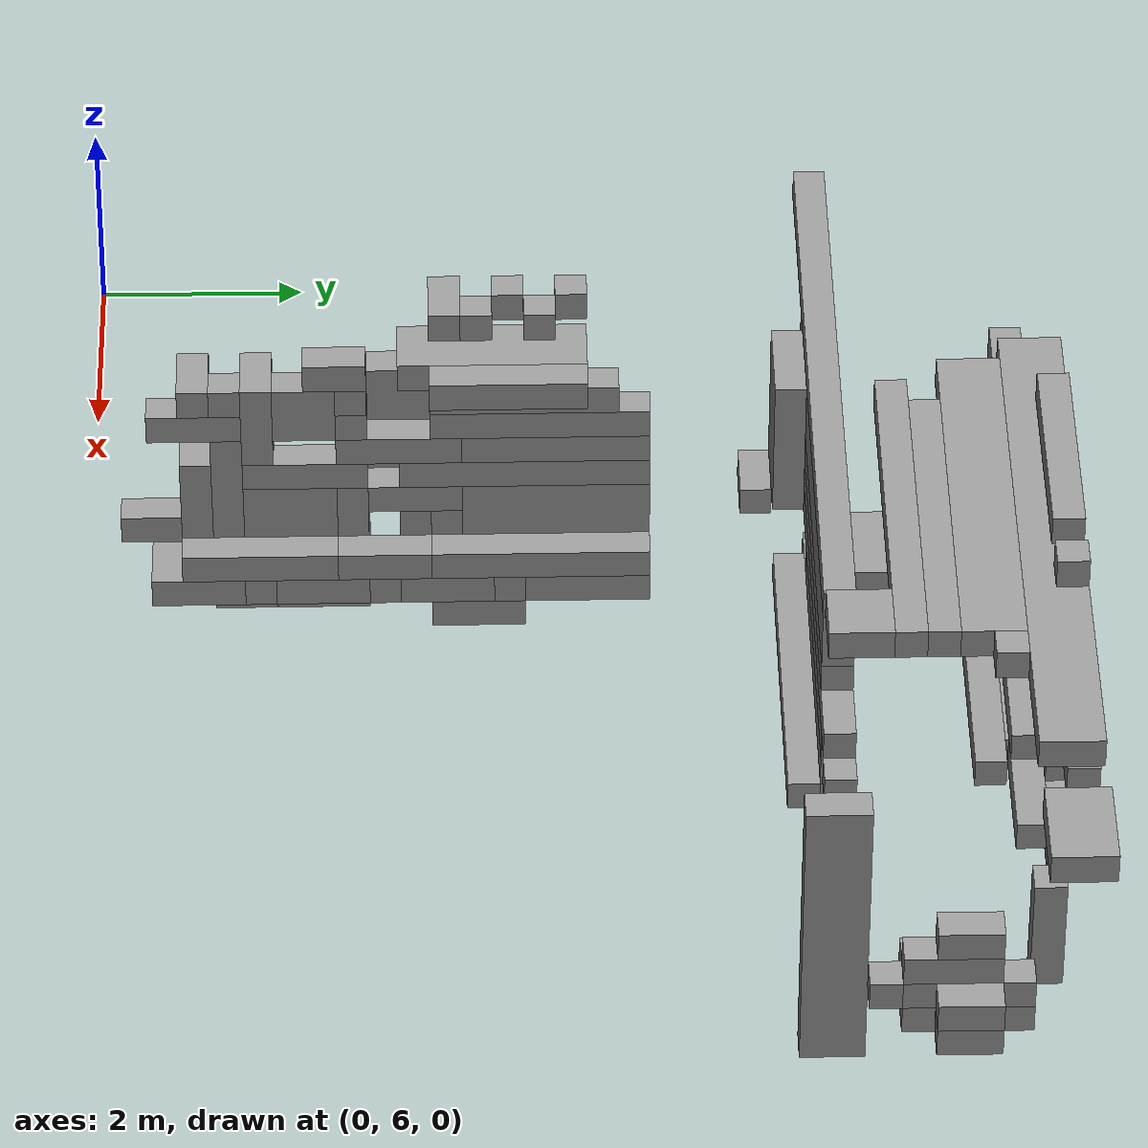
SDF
<sdf version="1.6">
 <world name="bt_world">
  <include><uri>model://sun</uri></include>
  <model name="obstacle_2222">
   <static>true</static>
   <pose>4.35 13.049999999999999 2.25 0 0 0</pose>
   <link name="link">
    <collision name="collision"><geometry><box><size>6.3 0.3 0.3</size></box></geometry></collision>
    <visual name="visual">
     <geometry><box><size>6.3 0.3 0.3</size></box></geometry>
     <material><ambient>0.5 0.5 0.5 1</ambient><diffuse>0.6 0.6 0.6 1</diffuse></material>
    </visual>
   </link>
  </model>
  <model name="obstacle_2225">
   <static>true</static>
   <pose>4.8 15.149999999999999 -0.15 0 0 0</pose>
   <link name="link">
    <collision name="collision"><geometry><box><size>7.199999999999999 0.3 0.3</size></box></geometry></collision>
    <visual name="visual">
     <geometry><box><size>7.199999999999999 0.3 0.3</size></box></geometry>
     <material><ambient>0.5 0.5 0.5 1</ambient><diffuse>0.6 0.6 0.6 1</diffuse></material>
    </visual>
   </link>
  </model>
  <model name="obstacle_2308">
   <static>true</static>
   <pose>5.3999999999999995 13.049999999999999 1.05 0 0 0</pose>
   <link name="link">
    <collision name="collision">
     <geometry><box><size>5.3999999999999995 0.3 0.3</size></box></geometry>
    </collision>
    <visual name="visual">
     <geometry><box><size>5.3999999999999995 0.3 0.3</size></box></geometry>
     <material><ambient>0.5 0.5 0.5 1</ambient><diffuse>0.6 0.6 0.6 1</diffuse></material>
    </visual>
   </link>
  </model>
  <model name="obstacle_2309">
   <static>true</static>
   <pose>5.1 13.049999999999999 1.3499999999999999 0 0 0</pose>
   <link name="link">
    <collision name="collision"><geometry><box><size>4.8 0.3 0.3</size></box></geometry></collision>
    <visual name="visual">
     <geometry><box><size>4.8 0.3 0.3</size></box></geometry>
     <material><ambient>0.5 0.5 0.5 1</ambient><diffuse>0.6 0.6 0.6 1</diffuse></material>
    </visual>
   </link>
  </model>
  <model name="obstacle_2312">
   <static>true</static>
   <pose>3.75 14.25 0.15 0 0 0</pose>
   <link name="link">
    <collision name="collision"><geometry><box><size>2.1 0.3 0.3</size></box></geometry></collision>
    <visual name="visual">
     <geometry><box><size>2.1 0.3 0.3</size></box></geometry>
     <material><ambient>0.5 0.5 0.5 1</ambient><diffuse>0.6 0.6 0.6 1</diffuse></material>
    </visual>
   </link>
  </model>
  <model name="obstacle_2349">
   <static>true</static>
   <pose>5.25 13.049999999999999 1.7999999999999998 0 0 0</pose>
   <link name="link">
    <collision name="collision"><geometry><box><size>4.5 0.3 0.6</size></box></geometry></collision>
    <visual name="visual">
     <geometry><box><size>4.5 0.3 0.6</size></box></geometry>
     <material><ambient>0.5 0.5 0.5 1</ambient><diffuse>0.6 0.6 0.6 1</diffuse></material>
    </visual>
   </link>
  </model>
  <model name="obstacle_2351">
   <static>true</static>
   <pose>3.9 13.95 0.15 0 0 0</pose>
   <link name="link">
    <collision name="collision">
     <geometry><box><size>1.7999999999999998 0.3 0.3</size></box></geometry>
    </collision>
    <visual name="visual">
     <geometry><box><size>1.7999999999999998 0.3 0.3</size></box></geometry>
     <material><ambient>0.5 0.5 0.5 1</ambient><diffuse>0.6 0.6 0.6 1</diffuse></material>
    </visual>
   </link>
  </model>
  <model name="obstacle_2370">
   <static>true</static>
   <pose>3.5999999999999996 12.45 0.44999999999999996 0 0 0</pose>
   <link name="link">
    <collision name="collision"><geometry><box><size>0.6 0.3 0.3</size></box></geometry></collision>
    <visual name="visual">
     <geometry><box><size>0.6 0.3 0.3</size></box></geometry>
     <material><ambient>0.5 0.5 0.5 1</ambient><diffuse>0.6 0.6 0.6 1</diffuse></material>
    </visual>
   </link>
  </model>
  <model name="obstacle_2371">
   <static>true</static>
   <pose>3.75 12.75 1.3499999999999999 0 0 0</pose>
   <link name="link">
    <collision name="collision">
     <geometry><box><size>0.8999999999999999 0.3 1.5</size></box></geometry>
    </collision>
    <visual name="visual">
     <geometry><box><size>0.8999999999999999 0.3 1.5</size></box></geometry>
     <material><ambient>0.5 0.5 0.5 1</ambient><diffuse>0.6 0.6 0.6 1</diffuse></material>
    </visual>
   </link>
  </model>
  <model name="obstacle_2374">
   <static>true</static>
   <pose>3.9 14.85 1.3499999999999999 0 0 0</pose>
   <link name="link">
    <collision name="collision"><geometry><box><size>1.2 0.3 1.5</size></box></geometry></collision>
    <visual name="visual">
     <geometry><box><size>1.2 0.3 1.5</size></box></geometry>
     <material><ambient>0.5 0.5 0.5 1</ambient><diffuse>0.6 0.6 0.6 1</diffuse></material>
    </visual>
   </link>
  </model>
  <model name="obstacle_2385">
   <static>true</static>
   <pose>4.05 8.25 -0.15 0 0 0</pose>
   <link name="link">
    <collision name="collision">
     <geometry><box><size>0.8999999999999999 0.8999999999999999 0.3</size></box></geometry>
    </collision>
    <visual name="visual">
     <geometry><box><size>0.8999999999999999 0.8999999999999999 0.3</size></box></geometry>
     <material><ambient>0.5 0.5 0.5 1</ambient><diffuse>0.6 0.6 0.6 1</diffuse></material>
    </visual>
   </link>
  </model>
  <model name="obstacle_2386">
   <static>true</static>
   <pose>4.05 14.85 0.3 0 0 0</pose>
   <link name="link">
    <collision name="collision">
     <geometry><box><size>0.8999999999999999 0.3 0.6</size></box></geometry>
    </collision>
    <visual name="visual">
     <geometry><box><size>0.8999999999999999 0.3 0.6</size></box></geometry>
     <material><ambient>0.5 0.5 0.5 1</ambient><diffuse>0.6 0.6 0.6 1</diffuse></material>
    </visual>
   </link>
  </model>
  <model name="obstacle_2429">
   <static>true</static>
   <pose>4.05 7.35 0.44999999999999996 0 0 0</pose>
   <link name="link">
    <collision name="collision"><geometry><box><size>0.3 2.1 0.3</size></box></geometry></collision>
    <visual name="visual">
     <geometry><box><size>0.3 2.1 0.3</size></box></geometry>
     <material><ambient>0.5 0.5 0.5 1</ambient><diffuse>0.6 0.6 0.6 1</diffuse></material>
    </visual>
   </link>
  </model>
  <model name="obstacle_2432">
   <static>true</static>
   <pose>4.2 7.05 1.05 0 0 0</pose>
   <link name="link">
    <collision name="collision">
     <geometry><box><size>0.6 0.3 0.8999999999999999</size></box></geometry>
    </collision>
    <visual name="visual">
     <geometry><box><size>0.6 0.3 0.8999999999999999</size></box></geometry>
     <material><ambient>0.5 0.5 0.5 1</ambient><diffuse>0.6 0.6 0.6 1</diffuse></material>
    </visual>
   </link>
  </model>
  <model name="obstacle_2433">
   <static>true</static>
   <pose>4.2 7.05 2.25 0 0 0</pose>
   <link name="link">
    <collision name="collision"><geometry><box><size>0.6 0.3 0.3</size></box></geometry></collision>
    <visual name="visual">
     <geometry><box><size>0.6 0.3 0.3</size></box></geometry>
     <material><ambient>0.5 0.5 0.5 1</ambient><diffuse>0.6 0.6 0.6 1</diffuse></material>
    </visual>
   </link>
  </model>
  <model name="obstacle_2434">
   <static>true</static>
   <pose>4.2 7.5 -0.15 0 0 0</pose>
   <link name="link">
    <collision name="collision"><geometry><box><size>0.6 0.6 0.3</size></box></geometry></collision>
    <visual name="visual">
     <geometry><box><size>0.6 0.6 0.3</size></box></geometry>
     <material><ambient>0.5 0.5 0.5 1</ambient><diffuse>0.6 0.6 0.6 1</diffuse></material>
    </visual>
   </link>
  </model>
  <model name="obstacle_2435">
   <static>true</static>
   <pose>4.2 7.949999999999999 0.8999999999999999 0 0 0</pose>
   <link name="link">
    <collision name="collision">
     <geometry><box><size>0.6 0.8999999999999999 0.6</size></box></geometry>
    </collision>
    <visual name="visual">
     <geometry><box><size>0.6 0.8999999999999999 0.6</size></box></geometry>
     <material><ambient>0.5 0.5 0.5 1</ambient><diffuse>0.6 0.6 0.6 1</diffuse></material>
    </visual>
   </link>
  </model>
  <model name="obstacle_2436">
   <static>true</static>
   <pose>4.2 7.6499999999999995 1.95 0 0 0</pose>
   <link name="link">
    <collision name="collision">
     <geometry><box><size>0.6 0.3 0.8999999999999999</size></box></geometry>
    </collision>
    <visual name="visual">
     <geometry><box><size>0.6 0.3 0.8999999999999999</size></box></geometry>
     <material><ambient>0.5 0.5 0.5 1</ambient><diffuse>0.6 0.6 0.6 1</diffuse></material>
    </visual>
   </link>
  </model>
  <model name="obstacle_2437">
   <static>true</static>
   <pose>4.2 9.0 1.65 0 0 0</pose>
   <link name="link">
    <collision name="collision"><geometry><box><size>0.6 1.2 0.3</size></box></geometry></collision>
    <visual name="visual">
     <geometry><box><size>0.6 1.2 0.3</size></box></geometry>
     <material><ambient>0.5 0.5 0.5 1</ambient><diffuse>0.6 0.6 0.6 1</diffuse></material>
    </visual>
   </link>
  </model>
  <model name="obstacle_2438">
   <static>true</static>
   <pose>4.2 8.549999999999999 1.95 0 0 0</pose>
   <link name="link">
    <collision name="collision"><geometry><box><size>0.6 0.3 0.3</size></box></geometry></collision>
    <visual name="visual">
     <geometry><box><size>0.6 0.3 0.3</size></box></geometry>
     <material><ambient>0.5 0.5 0.5 1</ambient><diffuse>0.6 0.6 0.6 1</diffuse></material>
    </visual>
   </link>
  </model>
  <model name="obstacle_2439">
   <static>true</static>
   <pose>4.2 9.15 1.05 0 0 0</pose>
   <link name="link">
    <collision name="collision">
     <geometry><box><size>0.6 0.8999999999999999 0.3</size></box></geometry>
    </collision>
    <visual name="visual">
     <geometry><box><size>0.6 0.8999999999999999 0.3</size></box></geometry>
     <material><ambient>0.5 0.5 0.5 1</ambient><diffuse>0.6 0.6 0.6 1</diffuse></material>
    </visual>
   </link>
  </model>
  <model name="obstacle_2440">
   <static>true</static>
   <pose>4.05 9.15 1.3499999999999999 0 0 0</pose>
   <link name="link">
    <collision name="collision">
     <geometry><box><size>0.3 0.8999999999999999 0.3</size></box></geometry>
    </collision>
    <visual name="visual">
     <geometry><box><size>0.3 0.8999999999999999 0.3</size></box></geometry>
     <material><ambient>0.5 0.5 0.5 1</ambient><diffuse>0.6 0.6 0.6 1</diffuse></material>
    </visual>
   </link>
  </model>
  <model name="obstacle_2441">
   <static>true</static>
   <pose>4.05 9.15 2.1 0 0 0</pose>
   <link name="link">
    <collision name="collision">
     <geometry><box><size>0.3 0.8999999999999999 0.6</size></box></geometry>
    </collision>
    <visual name="visual">
     <geometry><box><size>0.3 0.8999999999999999 0.6</size></box></geometry>
     <material><ambient>0.5 0.5 0.5 1</ambient><diffuse>0.6 0.6 0.6 1</diffuse></material>
    </visual>
   </link>
  </model>
  <model name="obstacle_2442">
   <static>true</static>
   <pose>4.2 9.9 2.55 0 0 0</pose>
   <link name="link">
    <collision name="collision">
     <geometry><box><size>0.6 1.7999999999999998 0.3</size></box></geometry>
    </collision>
    <visual name="visual">
     <geometry><box><size>0.6 1.7999999999999998 0.3</size></box></geometry>
     <material><ambient>0.5 0.5 0.5 1</ambient><diffuse>0.6 0.6 0.6 1</diffuse></material>
    </visual>
   </link>
  </model>
  <model name="obstacle_2443">
   <static>true</static>
   <pose>4.35 10.35 0.44999999999999996 0 0 0</pose>
   <link name="link">
    <collision name="collision">
     <geometry><box><size>0.8999999999999999 2.1 0.3</size></box></geometry>
    </collision>
    <visual name="visual">
     <geometry><box><size>0.8999999999999999 2.1 0.3</size></box></geometry>
     <material><ambient>0.5 0.5 0.5 1</ambient><diffuse>0.6 0.6 0.6 1</diffuse></material>
    </visual>
   </link>
  </model>
  <model name="obstacle_2444">
   <static>true</static>
   <pose>4.2 9.45 0.75 0 0 0</pose>
   <link name="link">
    <collision name="collision"><geometry><box><size>0.6 0.3 0.3</size></box></geometry></collision>
    <visual name="visual">
     <geometry><box><size>0.6 0.3 0.3</size></box></geometry>
     <material><ambient>0.5 0.5 0.5 1</ambient><diffuse>0.6 0.6 0.6 1</diffuse></material>
    </visual>
   </link>
  </model>
  <model name="obstacle_2445">
   <static>true</static>
   <pose>4.2 9.45 3.15 0 0 0</pose>
   <link name="link">
    <collision name="collision"><geometry><box><size>0.6 0.3 0.3</size></box></geometry></collision>
    <visual name="visual">
     <geometry><box><size>0.6 0.3 0.3</size></box></geometry>
     <material><ambient>0.5 0.5 0.5 1</ambient><diffuse>0.6 0.6 0.6 1</diffuse></material>
    </visual>
   </link>
  </model>
  <model name="obstacle_2446">
   <static>true</static>
   <pose>4.05 10.049999999999999 3.15 0 0 0</pose>
   <link name="link">
    <collision name="collision"><geometry><box><size>0.3 0.3 0.3</size></box></geometry></collision>
    <visual name="visual">
     <geometry><box><size>0.3 0.3 0.3</size></box></geometry>
     <material><ambient>0.5 0.5 0.5 1</ambient><diffuse>0.6 0.6 0.6 1</diffuse></material>
    </visual>
   </link>
  </model>
  <model name="obstacle_2447">
   <static>true</static>
   <pose>4.05 10.65 3.15 0 0 0</pose>
   <link name="link">
    <collision name="collision"><geometry><box><size>0.3 0.3 0.3</size></box></geometry></collision>
    <visual name="visual">
     <geometry><box><size>0.3 0.3 0.3</size></box></geometry>
     <material><ambient>0.5 0.5 0.5 1</ambient><diffuse>0.6 0.6 0.6 1</diffuse></material>
    </visual>
   </link>
  </model>
  <model name="obstacle_2448">
   <static>true</static>
   <pose>4.35 13.049999999999999 -0.44999999999999996 0 0 0</pose>
   <link name="link">
    <collision name="collision">
     <geometry><box><size>0.8999999999999999 0.3 0.3</size></box></geometry>
    </collision>
    <visual name="visual">
     <geometry><box><size>0.8999999999999999 0.3 0.3</size></box></geometry>
     <material><ambient>0.5 0.5 0.5 1</ambient><diffuse>0.6 0.6 0.6 1</diffuse></material>
    </visual>
   </link>
  </model>
  <model name="obstacle_2449">
   <static>true</static>
   <pose>4.35 13.5 0.15 0 0 0</pose>
   <link name="link">
    <collision name="collision">
     <geometry><box><size>0.8999999999999999 0.6 0.3</size></box></geometry>
    </collision>
    <visual name="visual">
     <geometry><box><size>0.8999999999999999 0.6 0.3</size></box></geometry>
     <material><ambient>0.5 0.5 0.5 1</ambient><diffuse>0.6 0.6 0.6 1</diffuse></material>
    </visual>
   </link>
  </model>
  <model name="obstacle_2450">
   <static>true</static>
   <pose>5.3999999999999995 14.85 -0.15 0 0 0</pose>
   <link name="link">
    <collision name="collision"><geometry><box><size>3.0 0.3 0.3</size></box></geometry></collision>
    <visual name="visual">
     <geometry><box><size>3.0 0.3 0.3</size></box></geometry>
     <material><ambient>0.5 0.5 0.5 1</ambient><diffuse>0.6 0.6 0.6 1</diffuse></material>
    </visual>
   </link>
  </model>
  <model name="obstacle_2518">
   <static>true</static>
   <pose>4.5 7.05 0.15 0 0 0</pose>
   <link name="link">
    <collision name="collision">
     <geometry><box><size>0.6 0.8999999999999999 0.3</size></box></geometry>
    </collision>
    <visual name="visual">
     <geometry><box><size>0.6 0.8999999999999999 0.3</size></box></geometry>
     <material><ambient>0.5 0.5 0.5 1</ambient><diffuse>0.6 0.6 0.6 1</diffuse></material>
    </visual>
   </link>
  </model>
  <model name="obstacle_2520">
   <static>true</static>
   <pose>4.35 7.05 1.95 0 0 0</pose>
   <link name="link">
    <collision name="collision">
     <geometry><box><size>0.3 0.8999999999999999 0.3</size></box></geometry>
    </collision>
    <visual name="visual">
     <geometry><box><size>0.3 0.8999999999999999 0.3</size></box></geometry>
     <material><ambient>0.5 0.5 0.5 1</ambient><diffuse>0.6 0.6 0.6 1</diffuse></material>
    </visual>
   </link>
  </model>
  <model name="obstacle_2522">
   <static>true</static>
   <pose>4.5 7.6499999999999995 0.44999999999999996 0 0 0</pose>
   <link name="link">
    <collision name="collision"><geometry><box><size>0.6 1.5 0.3</size></box></geometry></collision>
    <visual name="visual">
     <geometry><box><size>0.6 1.5 0.3</size></box></geometry>
     <material><ambient>0.5 0.5 0.5 1</ambient><diffuse>0.6 0.6 0.6 1</diffuse></material>
    </visual>
   </link>
  </model>
  <model name="obstacle_2523">
   <static>true</static>
   <pose>4.35 7.35 1.2 0 0 0</pose>
   <link name="link">
    <collision name="collision"><geometry><box><size>0.3 0.3 1.2</size></box></geometry></collision>
    <visual name="visual">
     <geometry><box><size>0.3 0.3 1.2</size></box></geometry>
     <material><ambient>0.5 0.5 0.5 1</ambient><diffuse>0.6 0.6 0.6 1</diffuse></material>
    </visual>
   </link>
  </model>
  <model name="obstacle_2524">
   <static>true</static>
   <pose>4.35 7.35 2.25 0 0 0</pose>
   <link name="link">
    <collision name="collision"><geometry><box><size>0.3 0.3 0.3</size></box></geometry></collision>
    <visual name="visual">
     <geometry><box><size>0.3 0.3 0.3</size></box></geometry>
     <material><ambient>0.5 0.5 0.5 1</ambient><diffuse>0.6 0.6 0.6 1</diffuse></material>
    </visual>
   </link>
  </model>
  <model name="obstacle_2525">
   <static>true</static>
   <pose>4.35 8.1 1.3499999999999999 0 0 0</pose>
   <link name="link">
    <collision name="collision"><geometry><box><size>0.3 1.2 0.3</size></box></geometry></collision>
    <visual name="visual">
     <geometry><box><size>0.3 1.2 0.3</size></box></geometry>
     <material><ambient>0.5 0.5 0.5 1</ambient><diffuse>0.6 0.6 0.6 1</diffuse></material>
    </visual>
   </link>
  </model>
  <model name="obstacle_2526">
   <static>true</static>
   <pose>4.5 8.25 0.15 0 0 0</pose>
   <link name="link">
    <collision name="collision">
     <geometry><box><size>0.6 0.8999999999999999 0.3</size></box></geometry>
    </collision>
    <visual name="visual">
     <geometry><box><size>0.6 0.8999999999999999 0.3</size></box></geometry>
     <material><ambient>0.5 0.5 0.5 1</ambient><diffuse>0.6 0.6 0.6 1</diffuse></material>
    </visual>
   </link>
  </model>
  <model name="obstacle_2527">
   <static>true</static>
   <pose>4.35 8.1 2.1 0 0 0</pose>
   <link name="link">
    <collision name="collision"><geometry><box><size>0.3 0.6 0.6</size></box></geometry></collision>
    <visual name="visual">
     <geometry><box><size>0.3 0.6 0.6</size></box></geometry>
     <material><ambient>0.5 0.5 0.5 1</ambient><diffuse>0.6 0.6 0.6 1</diffuse></material>
    </visual>
   </link>
  </model>
  <model name="obstacle_2528">
   <static>true</static>
   <pose>4.35 8.4 2.55 0 0 0</pose>
   <link name="link">
    <collision name="collision"><geometry><box><size>0.3 0.6 0.3</size></box></geometry></collision>
    <visual name="visual">
     <geometry><box><size>0.3 0.6 0.3</size></box></geometry>
     <material><ambient>0.5 0.5 0.5 1</ambient><diffuse>0.6 0.6 0.6 1</diffuse></material>
    </visual>
   </link>
  </model>
  <model name="obstacle_2529">
   <static>true</static>
   <pose>4.35 8.549999999999999 0.8999999999999999 0 0 0</pose>
   <link name="link">
    <collision name="collision"><geometry><box><size>0.3 0.3 0.6</size></box></geometry></collision>
    <visual name="visual">
     <geometry><box><size>0.3 0.3 0.6</size></box></geometry>
     <material><ambient>0.5 0.5 0.5 1</ambient><diffuse>0.6 0.6 0.6 1</diffuse></material>
    </visual>
   </link>
  </model>
  <model name="obstacle_2530">
   <static>true</static>
   <pose>4.35 8.549999999999999 2.25 0 0 0</pose>
   <link name="link">
    <collision name="collision"><geometry><box><size>0.3 0.3 0.3</size></box></geometry></collision>
    <visual name="visual">
     <geometry><box><size>0.3 0.3 0.3</size></box></geometry>
     <material><ambient>0.5 0.5 0.5 1</ambient><diffuse>0.6 0.6 0.6 1</diffuse></material>
    </visual>
   </link>
  </model>
  <model name="obstacle_2531">
   <static>true</static>
   <pose>4.5 9.45 0.15 0 0 0</pose>
   <link name="link">
    <collision name="collision">
     <geometry><box><size>0.6 0.8999999999999999 0.3</size></box></geometry>
    </collision>
    <visual name="visual">
     <geometry><box><size>0.6 0.8999999999999999 0.3</size></box></geometry>
     <material><ambient>0.5 0.5 0.5 1</ambient><diffuse>0.6 0.6 0.6 1</diffuse></material>
    </visual>
   </link>
  </model>
  <model name="obstacle_2532">
   <static>true</static>
   <pose>4.35 9.15 0.75 0 0 0</pose>
   <link name="link">
    <collision name="collision"><geometry><box><size>0.3 0.3 0.3</size></box></geometry></collision>
    <visual name="visual">
     <geometry><box><size>0.3 0.3 0.3</size></box></geometry>
     <material><ambient>0.5 0.5 0.5 1</ambient><diffuse>0.6 0.6 0.6 1</diffuse></material>
    </visual>
   </link>
  </model>
  <model name="obstacle_2533">
   <static>true</static>
   <pose>4.35 10.2 1.3499999999999999 0 0 0</pose>
   <link name="link">
    <collision name="collision"><geometry><box><size>0.3 2.4 0.3</size></box></geometry></collision>
    <visual name="visual">
     <geometry><box><size>0.3 2.4 0.3</size></box></geometry>
     <material><ambient>0.5 0.5 0.5 1</ambient><diffuse>0.6 0.6 0.6 1</diffuse></material>
    </visual>
   </link>
  </model>
  <model name="obstacle_2534">
   <static>true</static>
   <pose>4.35 10.35 1.95 0 0 0</pose>
   <link name="link">
    <collision name="collision"><geometry><box><size>0.3 2.1 0.3</size></box></geometry></collision>
    <visual name="visual">
     <geometry><box><size>0.3 2.1 0.3</size></box></geometry>
     <material><ambient>0.5 0.5 0.5 1</ambient><diffuse>0.6 0.6 0.6 1</diffuse></material>
    </visual>
   </link>
  </model>
  <model name="obstacle_2535">
   <static>true</static>
   <pose>4.35 10.2 2.25 0 0 0</pose>
   <link name="link">
    <collision name="collision">
     <geometry><box><size>0.3 1.7999999999999998 0.3</size></box></geometry>
    </collision>
    <visual name="visual">
     <geometry><box><size>0.3 1.7999999999999998 0.3</size></box></geometry>
     <material><ambient>0.5 0.5 0.5 1</ambient><diffuse>0.6 0.6 0.6 1</diffuse></material>
    </visual>
   </link>
  </model>
  <model name="obstacle_2536">
   <static>true</static>
   <pose>4.35 10.5 0.8999999999999999 0 0 0</pose>
   <link name="link">
    <collision name="collision">
     <geometry><box><size>0.3 1.7999999999999998 0.6</size></box></geometry>
    </collision>
    <visual name="visual">
     <geometry><box><size>0.3 1.7999999999999998 0.6</size></box></geometry>
     <material><ambient>0.5 0.5 0.5 1</ambient><diffuse>0.6 0.6 0.6 1</diffuse></material>
    </visual>
   </link>
  </model>
  <model name="obstacle_2537">
   <static>true</static>
   <pose>4.35 10.5 1.65 0 0 0</pose>
   <link name="link">
    <collision name="collision">
     <geometry><box><size>0.3 1.7999999999999998 0.3</size></box></geometry>
    </collision>
    <visual name="visual">
     <geometry><box><size>0.3 1.7999999999999998 0.3</size></box></geometry>
     <material><ambient>0.5 0.5 0.5 1</ambient><diffuse>0.6 0.6 0.6 1</diffuse></material>
    </visual>
   </link>
  </model>
  <model name="obstacle_2538">
   <static>true</static>
   <pose>4.35 9.75 3.15 0 0 0</pose>
   <link name="link">
    <collision name="collision"><geometry><box><size>0.3 0.3 0.3</size></box></geometry></collision>
    <visual name="visual">
     <geometry><box><size>0.3 0.3 0.3</size></box></geometry>
     <material><ambient>0.5 0.5 0.5 1</ambient><diffuse>0.6 0.6 0.6 1</diffuse></material>
    </visual>
   </link>
  </model>
  <model name="obstacle_2539">
   <static>true</static>
   <pose>4.5 10.799999999999999 0.15 0 0 0</pose>
   <link name="link">
    <collision name="collision"><geometry><box><size>0.6 1.2 0.3</size></box></geometry></collision>
    <visual name="visual">
     <geometry><box><size>0.6 1.2 0.3</size></box></geometry>
     <material><ambient>0.5 0.5 0.5 1</ambient><diffuse>0.6 0.6 0.6 1</diffuse></material>
    </visual>
   </link>
  </model>
  <model name="obstacle_2540">
   <static>true</static>
   <pose>4.35 10.35 3.15 0 0 0</pose>
   <link name="link">
    <collision name="collision"><geometry><box><size>0.3 0.3 0.3</size></box></geometry></collision>
    <visual name="visual">
     <geometry><box><size>0.3 0.3 0.3</size></box></geometry>
     <material><ambient>0.5 0.5 0.5 1</ambient><diffuse>0.6 0.6 0.6 1</diffuse></material>
    </visual>
   </link>
  </model>
  <model name="obstacle_2541">
   <static>true</static>
   <pose>4.6499999999999995 13.049999999999999 0.15 0 0 0</pose>
   <link name="link">
    <collision name="collision">
     <geometry><box><size>0.8999999999999999 0.3 0.3</size></box></geometry>
    </collision>
    <visual name="visual">
     <geometry><box><size>0.8999999999999999 0.3 0.3</size></box></geometry>
     <material><ambient>0.5 0.5 0.5 1</ambient><diffuse>0.6 0.6 0.6 1</diffuse></material>
    </visual>
   </link>
  </model>
  <model name="obstacle_2542">
   <static>true</static>
   <pose>6.0 13.049999999999999 0.75 0 0 0</pose>
   <link name="link">
    <collision name="collision">
     <geometry><box><size>3.5999999999999996 0.3 0.3</size></box></geometry>
    </collision>
    <visual name="visual">
     <geometry><box><size>3.5999999999999996 0.3 0.3</size></box></geometry>
     <material><ambient>0.5 0.5 0.5 1</ambient><diffuse>0.6 0.6 0.6 1</diffuse></material>
    </visual>
   </link>
  </model>
  <model name="obstacle_2543">
   <static>true</static>
   <pose>5.7 14.549999999999999 -0.15 0 0 0</pose>
   <link name="link">
    <collision name="collision"><geometry><box><size>3.0 0.3 0.3</size></box></geometry></collision>
    <visual name="visual">
     <geometry><box><size>3.0 0.3 0.3</size></box></geometry>
     <material><ambient>0.5 0.5 0.5 1</ambient><diffuse>0.6 0.6 0.6 1</diffuse></material>
    </visual>
   </link>
  </model>
  <model name="obstacle_2544">
   <static>true</static>
   <pose>7.05 15.0 2.55 0 0 0</pose>
   <link name="link">
    <collision name="collision"><geometry><box><size>5.7 0.6 0.3</size></box></geometry></collision>
    <visual name="visual">
     <geometry><box><size>5.7 0.6 0.3</size></box></geometry>
     <material><ambient>0.5 0.5 0.5 1</ambient><diffuse>0.6 0.6 0.6 1</diffuse></material>
    </visual>
   </link>
  </model>
  <model name="obstacle_2545">
   <static>true</static>
   <pose>4.6499999999999995 15.149999999999999 0.15 0 0 0</pose>
   <link name="link">
    <collision name="collision">
     <geometry><box><size>0.8999999999999999 0.3 0.3</size></box></geometry>
    </collision>
    <visual name="visual">
     <geometry><box><size>0.8999999999999999 0.3 0.3</size></box></geometry>
     <material><ambient>0.5 0.5 0.5 1</ambient><diffuse>0.6 0.6 0.6 1</diffuse></material>
    </visual>
   </link>
  </model>
  <model name="obstacle_2546">
   <static>true</static>
   <pose>4.6499999999999995 15.149999999999999 1.05 0 0 0</pose>
   <link name="link">
    <collision name="collision">
     <geometry><box><size>0.8999999999999999 0.3 0.8999999999999999</size></box></geometry>
    </collision>
    <visual name="visual">
     <geometry><box><size>0.8999999999999999 0.3 0.8999999999999999</size></box></geometry>
     <material><ambient>0.5 0.5 0.5 1</ambient><diffuse>0.6 0.6 0.6 1</diffuse></material>
    </visual>
   </link>
  </model>
  <model name="obstacle_2547">
   <static>true</static>
   <pose>4.5 15.149999999999999 1.7999999999999998 0 0 0</pose>
   <link name="link">
    <collision name="collision"><geometry><box><size>0.6 0.3 0.6</size></box></geometry></collision>
    <visual name="visual">
     <geometry><box><size>0.6 0.3 0.6</size></box></geometry>
     <material><ambient>0.5 0.5 0.5 1</ambient><diffuse>0.6 0.6 0.6 1</diffuse></material>
    </visual>
   </link>
  </model>
  <model name="obstacle_2548">
   <static>true</static>
   <pose>4.35 15.149999999999999 2.25 0 0 0</pose>
   <link name="link">
    <collision name="collision"><geometry><box><size>0.3 0.3 0.3</size></box></geometry></collision>
    <visual name="visual">
     <geometry><box><size>0.3 0.3 0.3</size></box></geometry>
     <material><ambient>0.5 0.5 0.5 1</ambient><diffuse>0.6 0.6 0.6 1</diffuse></material>
    </visual>
   </link>
  </model>
  <model name="obstacle_2588">
   <static>true</static>
   <pose>4.6499999999999995 7.6499999999999995 0.15 0 0 0</pose>
   <link name="link">
    <collision name="collision"><geometry><box><size>0.3 0.3 0.3</size></box></geometry></collision>
    <visual name="visual">
     <geometry><box><size>0.3 0.3 0.3</size></box></geometry>
     <material><ambient>0.5 0.5 0.5 1</ambient><diffuse>0.6 0.6 0.6 1</diffuse></material>
    </visual>
   </link>
  </model>
  <model name="obstacle_2589">
   <static>true</static>
   <pose>4.6499999999999995 8.85 0.44999999999999996 0 0 0</pose>
   <link name="link">
    <collision name="collision">
     <geometry><box><size>0.3 0.8999999999999999 0.3</size></box></geometry>
    </collision>
    <visual name="visual">
     <geometry><box><size>0.3 0.8999999999999999 0.3</size></box></geometry>
     <material><ambient>0.5 0.5 0.5 1</ambient><diffuse>0.6 0.6 0.6 1</diffuse></material>
    </visual>
   </link>
  </model>
  <model name="obstacle_2590">
   <static>true</static>
   <pose>4.6499999999999995 8.85 0.15 0 0 0</pose>
   <link name="link">
    <collision name="collision"><geometry><box><size>0.3 0.3 0.3</size></box></geometry></collision>
    <visual name="visual">
     <geometry><box><size>0.3 0.3 0.3</size></box></geometry>
     <material><ambient>0.5 0.5 0.5 1</ambient><diffuse>0.6 0.6 0.6 1</diffuse></material>
    </visual>
   </link>
  </model>
  <model name="obstacle_2591">
   <static>true</static>
   <pose>4.6499999999999995 9.75 -0.15 0 0 0</pose>
   <link name="link">
    <collision name="collision">
     <geometry><box><size>0.3 0.8999999999999999 0.3</size></box></geometry>
    </collision>
    <visual name="visual">
     <geometry><box><size>0.3 0.8999999999999999 0.3</size></box></geometry>
     <material><ambient>0.5 0.5 0.5 1</ambient><diffuse>0.6 0.6 0.6 1</diffuse></material>
    </visual>
   </link>
  </model>
  <model name="obstacle_2592">
   <static>true</static>
   <pose>4.6499999999999995 10.049999999999999 2.55 0 0 0</pose>
   <link name="link">
    <collision name="collision"><geometry><box><size>0.3 1.5 0.3</size></box></geometry></collision>
    <visual name="visual">
     <geometry><box><size>0.3 1.5 0.3</size></box></geometry>
     <material><ambient>0.5 0.5 0.5 1</ambient><diffuse>0.6 0.6 0.6 1</diffuse></material>
    </visual>
   </link>
  </model>
  <model name="obstacle_2593">
   <static>true</static>
   <pose>4.6499999999999995 10.049999999999999 0.15 0 0 0</pose>
   <link name="link">
    <collision name="collision"><geometry><box><size>0.3 0.3 0.3</size></box></geometry></collision>
    <visual name="visual">
     <geometry><box><size>0.3 0.3 0.3</size></box></geometry>
     <material><ambient>0.5 0.5 0.5 1</ambient><diffuse>0.6 0.6 0.6 1</diffuse></material>
    </visual>
   </link>
  </model>
  <model name="obstacle_2594">
   <static>true</static>
   <pose>6.1499999999999995 12.75 0.15 0 0 0</pose>
   <link name="link">
    <collision name="collision"><geometry><box><size>3.3 0.3 0.3</size></box></geometry></collision>
    <visual name="visual">
     <geometry><box><size>3.3 0.3 0.3</size></box></geometry>
     <material><ambient>0.5 0.5 0.5 1</ambient><diffuse>0.6 0.6 0.6 1</diffuse></material>
    </visual>
   </link>
  </model>
  <model name="obstacle_2595">
   <static>true</static>
   <pose>6.45 14.399999999999999 2.55 0 0 0</pose>
   <link name="link">
    <collision name="collision"><geometry><box><size>3.9 0.6 0.3</size></box></geometry></collision>
    <visual name="visual">
     <geometry><box><size>3.9 0.6 0.3</size></box></geometry>
     <material><ambient>0.5 0.5 0.5 1</ambient><diffuse>0.6 0.6 0.6 1</diffuse></material>
    </visual>
   </link>
  </model>
  <model name="obstacle_2596">
   <static>true</static>
   <pose>4.6499999999999995 14.85 1.65 0 0 0</pose>
   <link name="link">
    <collision name="collision"><geometry><box><size>0.3 0.3 0.3</size></box></geometry></collision>
    <visual name="visual">
     <geometry><box><size>0.3 0.3 0.3</size></box></geometry>
     <material><ambient>0.5 0.5 0.5 1</ambient><diffuse>0.6 0.6 0.6 1</diffuse></material>
    </visual>
   </link>
  </model>
  <model name="obstacle_2609">
   <static>true</static>
   <pose>6.3 13.049999999999999 0.44999999999999996 0 0 0</pose>
   <link name="link">
    <collision name="collision"><geometry><box><size>3.0 0.3 0.3</size></box></geometry></collision>
    <visual name="visual">
     <geometry><box><size>3.0 0.3 0.3</size></box></geometry>
     <material><ambient>0.5 0.5 0.5 1</ambient><diffuse>0.6 0.6 0.6 1</diffuse></material>
    </visual>
   </link>
  </model>
  <model name="obstacle_2610">
   <static>true</static>
   <pose>6.6 13.65 2.55 0 0 0</pose>
   <link name="link">
    <collision name="collision">
     <geometry><box><size>3.5999999999999996 0.3 0.3</size></box></geometry>
    </collision>
    <visual name="visual">
     <geometry><box><size>3.5999999999999996 0.3 0.3</size></box></geometry>
     <material><ambient>0.5 0.5 0.5 1</ambient><diffuse>0.6 0.6 0.6 1</diffuse></material>
    </visual>
   </link>
  </model>
  <model name="obstacle_2611">
   <static>true</static>
   <pose>4.95 15.149999999999999 1.95 0 0 0</pose>
   <link name="link">
    <collision name="collision"><geometry><box><size>0.3 0.3 0.3</size></box></geometry></collision>
    <visual name="visual">
     <geometry><box><size>0.3 0.3 0.3</size></box></geometry>
     <material><ambient>0.5 0.5 0.5 1</ambient><diffuse>0.6 0.6 0.6 1</diffuse></material>
    </visual>
   </link>
  </model>
  <model name="obstacle_2616">
   <static>true</static>
   <pose>6.75 13.95 2.55 0 0 0</pose>
   <link name="link">
    <collision name="collision"><geometry><box><size>3.3 0.3 0.3</size></box></geometry></collision>
    <visual name="visual">
     <geometry><box><size>3.3 0.3 0.3</size></box></geometry>
     <material><ambient>0.5 0.5 0.5 1</ambient><diffuse>0.6 0.6 0.6 1</diffuse></material>
    </visual>
   </link>
  </model>
  <model name="obstacle_2617">
   <static>true</static>
   <pose>5.25 15.149999999999999 2.25 0 0 0</pose>
   <link name="link">
    <collision name="collision"><geometry><box><size>0.3 0.3 0.3</size></box></geometry></collision>
    <visual name="visual">
     <geometry><box><size>0.3 0.3 0.3</size></box></geometry>
     <material><ambient>0.5 0.5 0.5 1</ambient><diffuse>0.6 0.6 0.6 1</diffuse></material>
    </visual>
   </link>
  </model>
  <model name="obstacle_2618">
   <static>true</static>
   <pose>6.1499999999999995 15.149999999999999 2.85 0 0 0</pose>
   <link name="link">
    <collision name="collision"><geometry><box><size>2.1 0.3 0.3</size></box></geometry></collision>
    <visual name="visual">
     <geometry><box><size>2.1 0.3 0.3</size></box></geometry>
     <material><ambient>0.5 0.5 0.5 1</ambient><diffuse>0.6 0.6 0.6 1</diffuse></material>
    </visual>
   </link>
  </model>
  <model name="obstacle_2626">
   <static>true</static>
   <pose>5.85 13.049999999999999 0.15 0 0 0</pose>
   <link name="link">
    <collision name="collision">
     <geometry><box><size>0.8999999999999999 0.3 0.3</size></box></geometry>
    </collision>
    <visual name="visual">
     <geometry><box><size>0.8999999999999999 0.3 0.3</size></box></geometry>
     <material><ambient>0.5 0.5 0.5 1</ambient><diffuse>0.6 0.6 0.6 1</diffuse></material>
    </visual>
   </link>
  </model>
  <model name="obstacle_2627">
   <static>true</static>
   <pose>5.85 15.149999999999999 0.15 0 0 0</pose>
   <link name="link">
    <collision name="collision">
     <geometry><box><size>0.8999999999999999 0.3 0.3</size></box></geometry>
    </collision>
    <visual name="visual">
     <geometry><box><size>0.8999999999999999 0.3 0.3</size></box></geometry>
     <material><ambient>0.5 0.5 0.5 1</ambient><diffuse>0.6 0.6 0.6 1</diffuse></material>
    </visual>
   </link>
  </model>
  <model name="obstacle_2628">
   <static>true</static>
   <pose>6.6 15.149999999999999 1.05 0 0 0</pose>
   <link name="link">
    <collision name="collision">
     <geometry><box><size>2.4 0.3 0.8999999999999999</size></box></geometry>
    </collision>
    <visual name="visual">
     <geometry><box><size>2.4 0.3 0.8999999999999999</size></box></geometry>
     <material><ambient>0.5 0.5 0.5 1</ambient><diffuse>0.6 0.6 0.6 1</diffuse></material>
    </visual>
   </link>
  </model>
  <model name="obstacle_2629">
   <static>true</static>
   <pose>7.5 15.149999999999999 1.95 0 0 0</pose>
   <link name="link">
    <collision name="collision"><geometry><box><size>4.2 0.3 0.3</size></box></geometry></collision>
    <visual name="visual">
     <geometry><box><size>4.2 0.3 0.3</size></box></geometry>
     <material><ambient>0.5 0.5 0.5 1</ambient><diffuse>0.6 0.6 0.6 1</diffuse></material>
    </visual>
   </link>
  </model>
  <model name="obstacle_2635">
   <static>true</static>
   <pose>7.35 15.149999999999999 2.25 0 0 0</pose>
   <link name="link">
    <collision name="collision"><geometry><box><size>3.3 0.3 0.3</size></box></geometry></collision>
    <visual name="visual">
     <geometry><box><size>3.3 0.3 0.3</size></box></geometry>
     <material><ambient>0.5 0.5 0.5 1</ambient><diffuse>0.6 0.6 0.6 1</diffuse></material>
    </visual>
   </link>
  </model>
  <model name="obstacle_2643">
   <static>true</static>
   <pose>6.1499999999999995 14.85 1.05 0 0 0</pose>
   <link name="link">
    <collision name="collision"><geometry><box><size>0.3 0.3 0.3</size></box></geometry></collision>
    <visual name="visual">
     <geometry><box><size>0.3 0.3 0.3</size></box></geometry>
     <material><ambient>0.5 0.5 0.5 1</ambient><diffuse>0.6 0.6 0.6 1</diffuse></material>
    </visual>
   </link>
  </model>
  <model name="obstacle_2644">
   <static>true</static>
   <pose>6.1499999999999995 15.0 1.65 0 0 0</pose>
   <link name="link">
    <collision name="collision"><geometry><box><size>0.3 0.6 0.3</size></box></geometry></collision>
    <visual name="visual">
     <geometry><box><size>0.3 0.6 0.3</size></box></geometry>
     <material><ambient>0.5 0.5 0.5 1</ambient><diffuse>0.6 0.6 0.6 1</diffuse></material>
    </visual>
   </link>
  </model>
  <model name="obstacle_2651">
   <static>true</static>
   <pose>6.8999999999999995 15.0 0.44999999999999996 0 0 0</pose>
   <link name="link">
    <collision name="collision"><geometry><box><size>1.2 0.6 0.3</size></box></geometry></collision>
    <visual name="visual">
     <geometry><box><size>1.2 0.6 0.3</size></box></geometry>
     <material><ambient>0.5 0.5 0.5 1</ambient><diffuse>0.6 0.6 0.6 1</diffuse></material>
    </visual>
   </link>
  </model>
  <model name="obstacle_2656">
   <static>true</static>
   <pose>7.199999999999999 13.049999999999999 0.15 0 0 0</pose>
   <link name="link">
    <collision name="collision"><geometry><box><size>1.2 0.3 0.3</size></box></geometry></collision>
    <visual name="visual">
     <geometry><box><size>1.2 0.3 0.3</size></box></geometry>
     <material><ambient>0.5 0.5 0.5 1</ambient><diffuse>0.6 0.6 0.6 1</diffuse></material>
    </visual>
   </link>
  </model>
  <model name="obstacle_2657">
   <static>true</static>
   <pose>7.5 15.149999999999999 0.15 0 0 0</pose>
   <link name="link">
    <collision name="collision">
     <geometry><box><size>1.7999999999999998 0.3 0.3</size></box></geometry>
    </collision>
    <visual name="visual">
     <geometry><box><size>1.7999999999999998 0.3 0.3</size></box></geometry>
     <material><ambient>0.5 0.5 0.5 1</ambient><diffuse>0.6 0.6 0.6 1</diffuse></material>
    </visual>
   </link>
  </model>
  <model name="obstacle_2660">
   <static>true</static>
   <pose>7.8 14.85 0.15 0 0 0</pose>
   <link name="link">
    <collision name="collision"><geometry><box><size>1.2 0.3 0.3</size></box></geometry></collision>
    <visual name="visual">
     <geometry><box><size>1.2 0.3 0.3</size></box></geometry>
     <material><ambient>0.5 0.5 0.5 1</ambient><diffuse>0.6 0.6 0.6 1</diffuse></material>
    </visual>
   </link>
  </model>
  <model name="obstacle_2661">
   <static>true</static>
   <pose>7.6499999999999995 15.149999999999999 0.44999999999999996 0 0 0</pose>
   <link name="link">
    <collision name="collision"><geometry><box><size>0.3 0.3 0.3</size></box></geometry></collision>
    <visual name="visual">
     <geometry><box><size>0.3 0.3 0.3</size></box></geometry>
     <material><ambient>0.5 0.5 0.5 1</ambient><diffuse>0.6 0.6 0.6 1</diffuse></material>
    </visual>
   </link>
  </model>
  <model name="obstacle_2662">
   <static>true</static>
   <pose>7.6499999999999995 15.149999999999999 2.85 0 0 0</pose>
   <link name="link">
    <collision name="collision"><geometry><box><size>0.3 0.3 0.3</size></box></geometry></collision>
    <visual name="visual">
     <geometry><box><size>0.3 0.3 0.3</size></box></geometry>
     <material><ambient>0.5 0.5 0.5 1</ambient><diffuse>0.6 0.6 0.6 1</diffuse></material>
    </visual>
   </link>
  </model>
  <model name="obstacle_2665">
   <static>true</static>
   <pose>8.1 13.2 2.55 0 0 0</pose>
   <link name="link">
    <collision name="collision"><geometry><box><size>0.6 0.6 0.3</size></box></geometry></collision>
    <visual name="visual">
     <geometry><box><size>0.6 0.6 0.3</size></box></geometry>
     <material><ambient>0.5 0.5 0.5 1</ambient><diffuse>0.6 0.6 0.6 1</diffuse></material>
    </visual>
   </link>
  </model>
  <model name="obstacle_2670">
   <static>true</static>
   <pose>8.25 13.049999999999999 0.75 0 0 0</pose>
   <link name="link">
    <collision name="collision"><geometry><box><size>0.3 0.3 0.3</size></box></geometry></collision>
    <visual name="visual">
     <geometry><box><size>0.3 0.3 0.3</size></box></geometry>
     <material><ambient>0.5 0.5 0.5 1</ambient><diffuse>0.6 0.6 0.6 1</diffuse></material>
    </visual>
   </link>
  </model>
  <model name="obstacle_2672">
   <static>true</static>
   <pose>8.549999999999999 14.549999999999999 2.55 0 0 0</pose>
   <link name="link">
    <collision name="collision"><geometry><box><size>0.3 0.3 0.3</size></box></geometry></collision>
    <visual name="visual">
     <geometry><box><size>0.3 0.3 0.3</size></box></geometry>
     <material><ambient>0.5 0.5 0.5 1</ambient><diffuse>0.6 0.6 0.6 1</diffuse></material>
    </visual>
   </link>
  </model>
  <model name="obstacle_2678">
   <static>true</static>
   <pose>10.049999999999999 14.85 0.6 0 0 0</pose>
   <link name="link">
    <collision name="collision"><geometry><box><size>0.3 0.3 1.2</size></box></geometry></collision>
    <visual name="visual">
     <geometry><box><size>0.3 0.3 1.2</size></box></geometry>
     <material><ambient>0.5 0.5 0.5 1</ambient><diffuse>0.6 0.6 0.6 1</diffuse></material>
    </visual>
   </link>
  </model>
  <model name="obstacle_2686">
   <static>true</static>
   <pose>10.35 12.9 0.8999999999999999 0 0 0</pose>
   <link name="link">
    <collision name="collision"><geometry><box><size>0.3 0.6 3.0</size></box></geometry></collision>
    <visual name="visual">
     <geometry><box><size>0.3 0.6 3.0</size></box></geometry>
     <material><ambient>0.5 0.5 0.5 1</ambient><diffuse>0.6 0.6 0.6 1</diffuse></material>
    </visual>
   </link>
  </model>
  <model name="obstacle_2687">
   <static>true</static>
   <pose>10.5 13.65 0.44999999999999996 0 0 0</pose>
   <link name="link">
    <collision name="collision"><geometry><box><size>0.6 0.3 0.3</size></box></geometry></collision>
    <visual name="visual">
     <geometry><box><size>0.6 0.3 0.3</size></box></geometry>
     <material><ambient>0.5 0.5 0.5 1</ambient><diffuse>0.6 0.6 0.6 1</diffuse></material>
    </visual>
   </link>
  </model>
  <model name="obstacle_2710">
   <static>true</static>
   <pose>10.65 13.35 0.44999999999999996 0 0 0</pose>
   <link name="link">
    <collision name="collision"><geometry><box><size>0.3 0.3 0.3</size></box></geometry></collision>
    <visual name="visual">
     <geometry><box><size>0.3 0.3 0.3</size></box></geometry>
     <material><ambient>0.5 0.5 0.5 1</ambient><diffuse>0.6 0.6 0.6 1</diffuse></material>
    </visual>
   </link>
  </model>
  <model name="obstacle_2711">
   <static>true</static>
   <pose>10.65 14.1 0.15 0 0 0</pose>
   <link name="link">
    <collision name="collision"><geometry><box><size>0.3 1.2 0.3</size></box></geometry></collision>
    <visual name="visual">
     <geometry><box><size>0.3 1.2 0.3</size></box></geometry>
     <material><ambient>0.5 0.5 0.5 1</ambient><diffuse>0.6 0.6 0.6 1</diffuse></material>
    </visual>
   </link>
  </model>
  <model name="obstacle_2712">
   <static>true</static>
   <pose>10.65 13.95 0.75 0 0 0</pose>
   <link name="link">
    <collision name="collision">
     <geometry><box><size>0.3 0.8999999999999999 0.3</size></box></geometry>
    </collision>
    <visual name="visual">
     <geometry><box><size>0.3 0.8999999999999999 0.3</size></box></geometry>
     <material><ambient>0.5 0.5 0.5 1</ambient><diffuse>0.6 0.6 0.6 1</diffuse></material>
    </visual>
   </link>
  </model>
  <model name="obstacle_2713">
   <static>true</static>
   <pose>10.799999999999999 14.1 0.44999999999999996 0 0 0</pose>
   <link name="link">
    <collision name="collision"><geometry><box><size>0.6 0.6 0.3</size></box></geometry></collision>
    <visual name="visual">
     <geometry><box><size>0.6 0.6 0.3</size></box></geometry>
     <material><ambient>0.5 0.5 0.5 1</ambient><diffuse>0.6 0.6 0.6 1</diffuse></material>
    </visual>
   </link>
  </model>
  <model name="obstacle_2714">
   <static>true</static>
   <pose>10.65 14.1 1.05 0 0 0</pose>
   <link name="link">
    <collision name="collision"><geometry><box><size>0.3 0.6 0.3</size></box></geometry></collision>
    <visual name="visual">
     <geometry><box><size>0.3 0.6 0.3</size></box></geometry>
     <material><ambient>0.5 0.5 0.5 1</ambient><diffuse>0.6 0.6 0.6 1</diffuse></material>
    </visual>
   </link>
  </model>
  <model name="obstacle_2715">
   <static>true</static>
   <pose>10.65 14.549999999999999 0.44999999999999996 0 0 0</pose>
   <link name="link">
    <collision name="collision"><geometry><box><size>0.3 0.3 0.3</size></box></geometry></collision>
    <visual name="visual">
     <geometry><box><size>0.3 0.3 0.3</size></box></geometry>
     <material><ambient>0.5 0.5 0.5 1</ambient><diffuse>0.6 0.6 0.6 1</diffuse></material>
    </visual>
   </link>
  </model>
  <model name="obstacle_2716">
   <static>true</static>
   <pose>10.95 15.0 2.55 0 0 0</pose>
   <link name="link">
    <collision name="collision">
     <geometry><box><size>0.8999999999999999 0.6 0.3</size></box></geometry>
    </collision>
    <visual name="visual">
     <geometry><box><size>0.8999999999999999 0.6 0.3</size></box></geometry>
     <material><ambient>0.5 0.5 0.5 1</ambient><diffuse>0.6 0.6 0.6 1</diffuse></material>
    </visual>
   </link>
  </model>
  <model name="obstacle_2753">
   <static>true</static>
   <pose>10.95 14.1 0.15 0 0 0</pose>
   <link name="link">
    <collision name="collision"><geometry><box><size>0.3 0.6 0.3</size></box></geometry></collision>
    <visual name="visual">
     <geometry><box><size>0.3 0.6 0.3</size></box></geometry>
     <material><ambient>0.5 0.5 0.5 1</ambient><diffuse>0.6 0.6 0.6 1</diffuse></material>
    </visual>
   </link>
  </model>
 </world>
</sdf>
